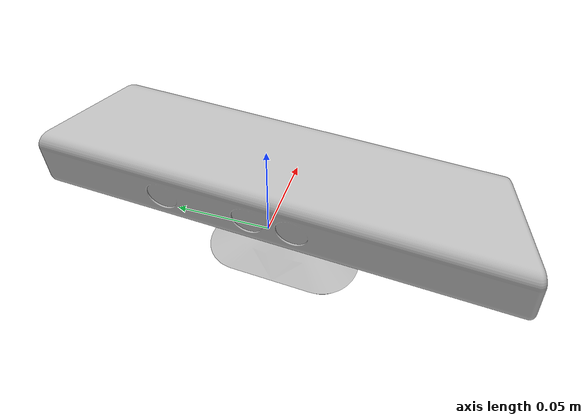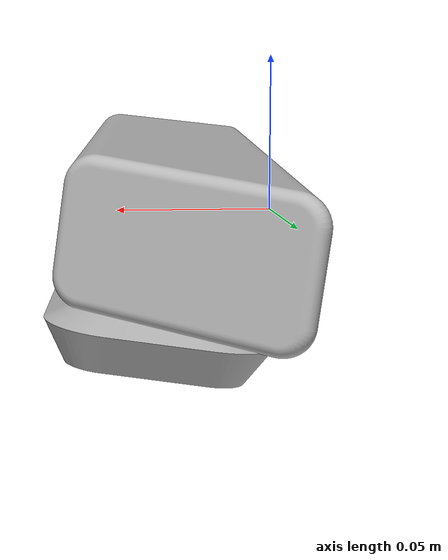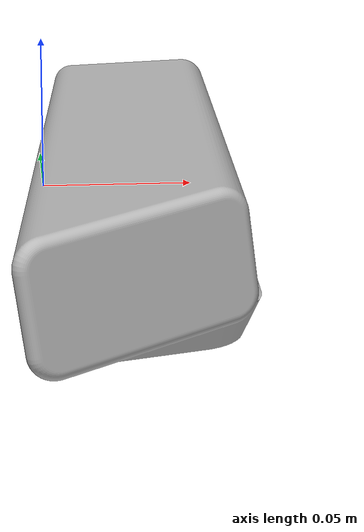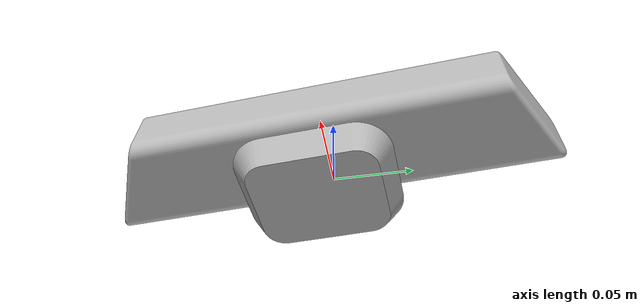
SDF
<?xml version='1.0'?>
<sdf version='1.7'>
  <model name='modelprueba1'>
    <model name='kinect'>
      <pose>-2e-06 0 -1e-06 -0 0.136921 3.06987</pose>
      <link name='link'>
        <inertial>
          <mass>0.1</mass>
        </inertial>
        <collision name='collision'>
          <geometry>
            <box>
              <size>0.073 0.276 0.072</size>
            </box>
          </geometry>
        </collision>
        <visual name='visual'>
          <geometry>
            <mesh>
              <uri>model://kinect/meshes/kinect.dae</uri>
            </mesh>
          </geometry>
        </visual>
        <sensor name='camera' type='depth'>
          <update_rate>20</update_rate>
          <camera>
            <horizontal_fov>1.0472</horizontal_fov>
            <image>
              <width>640</width>
              <height>480</height>
              <format>R8G8B8</format>
            </image>
            <clip>
              <near>0.05</near>
              <far>3</far>
            </clip>
          </camera>
          <plugin name='camera_plugin' filename='libgazebo_ros_openni_kinect.so'>
            <baseline>0.2</baseline>
            <alwaysOn>1</alwaysOn>
            <updateRate>20</updateRate>
            <cameraName>camera_ir</cameraName>
            <imageTopicName>/camera/color/image_raw</imageTopicName>
            <cameraInfoTopicName>/camera/color/camera_info</cameraInfoTopicName>
            <depthImageTopicName>/camera/depth/image_raw</depthImageTopicName>
            <depthImageCameraInfoTopicName>/camera/depth/camera_info</depthImageCameraInfoTopicName>
            <pointCloudTopicName>/camera/depth/points</pointCloudTopicName>
            <frameName>camera_link</frameName>
            <pointCloudCutoff>0.5</pointCloudCutoff>
            <pointCloudCutoffMax>3.0</pointCloudCutoffMax>
            <distortionK1>0</distortionK1>
            <distortionK2>0</distortionK2>
            <distortionK3>0</distortionK3>
            <distortionT1>0</distortionT1>
            <distortionT2>0</distortionT2>
            <CxPrime>0</CxPrime>
            <Cx>0</Cx>
            <Cy>0</Cy>
            <focalLength>0</focalLength>
            <hackBaseline>0</hackBaseline>
          </plugin>
        </sensor>
      </link>
    </model>
    <static>0</static>
    <allow_auto_disable>1</allow_auto_disable>
  </model>
</sdf>
